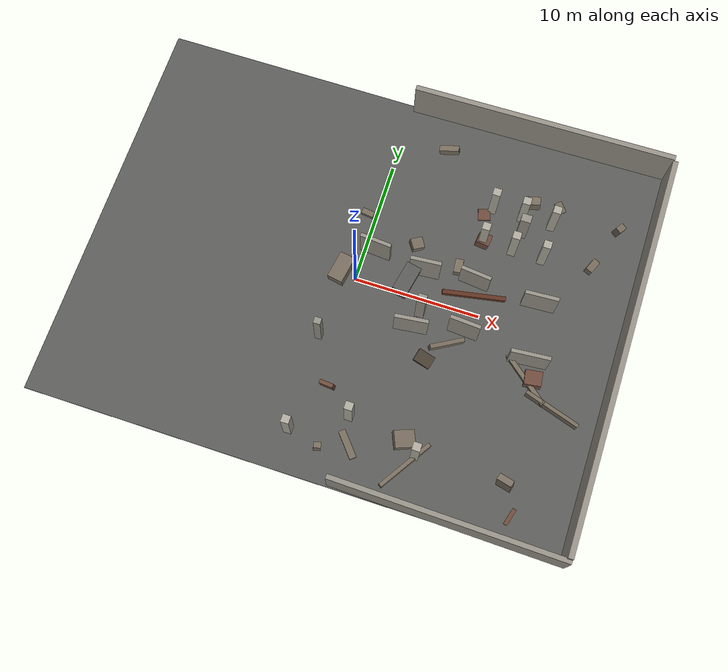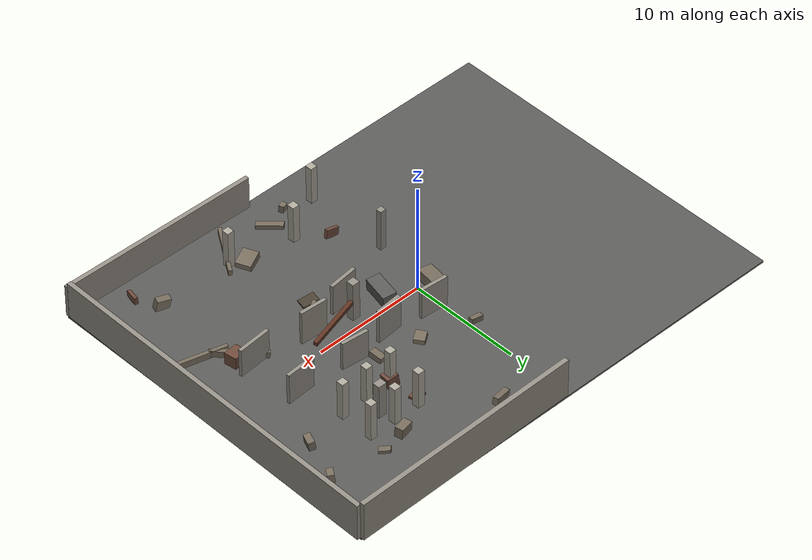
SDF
<sdf version="1.6">
 <model name="ruins_urban_01_base">
  <static>true</static>
  <link name="000_floor_slab">
   <pose>0.00000 0.00000 -0.08000 0.00000 0.00000 0.00000</pose>
   <visual name="visual">
    <geometry><box><size>42.00000 32.00000 0.16000</size></box></geometry>
    <material>
     <ambient>0.350 0.350 0.340 1</ambient>
     <diffuse>0.350 0.350 0.340 1</diffuse>
     <specular>0.03 0.03 0.03 1</specular>
    </material>
   </visual>
   <collision name="collision">
    <geometry><box><size>42.00000 32.00000 0.16000</size></box></geometry>
    <surface>
     <contact><collide_bitmask>0x01</collide_bitmask></contact>
     <friction><ode><mu>1.0</mu><mu2>1.0</mu2></ode></friction>
    </surface>
   </collision>
  </link>
  <link name="002_north_boundary_east">
   <pose>10.50000 15.90000 1.80000 0.00000 0.00000 0.01500</pose>
   <visual name="visual">
    <geometry><box><size>21.00000 0.42000 3.60000</size></box></geometry>
    <material>
     <ambient>0.580 0.560 0.520 1</ambient>
     <diffuse>0.580 0.560 0.520 1</diffuse>
     <specular>0.03 0.03 0.03 1</specular>
    </material>
   </visual>
   <collision name="collision">
    <geometry><box><size>21.00000 0.42000 3.60000</size></box></geometry>
    <surface>
     <contact><collide_bitmask>0x01</collide_bitmask></contact>
     <friction><ode><mu>1.0</mu><mu2>1.0</mu2></ode></friction>
    </surface>
   </collision>
  </link>
  <link name="004_south_boundary_east">
   <pose>12.00000 -15.85000 1.50000 0.00000 0.00000 -0.01800</pose>
   <visual name="visual">
    <geometry><box><size>18.00000 0.38000 3.00000</size></box></geometry>
    <material>
     <ambient>0.580 0.560 0.520 1</ambient>
     <diffuse>0.580 0.560 0.520 1</diffuse>
     <specular>0.03 0.03 0.03 1</specular>
    </material>
   </visual>
   <collision name="collision">
    <geometry><box><size>18.00000 0.38000 3.00000</size></box></geometry>
    <surface>
     <contact><collide_bitmask>0x01</collide_bitmask></contact>
     <friction><ode><mu>1.0</mu><mu2>1.0</mu2></ode></friction>
    </surface>
   </collision>
  </link>
  <link name="007_east_boundary">
   <pose>20.95000 0.00000 1.70000 0.00000 0.00000 -0.01000</pose>
   <visual name="visual">
    <geometry><box><size>0.42000 31.80000 3.40000</size></box></geometry>
    <material>
     <ambient>0.580 0.560 0.520 1</ambient>
     <diffuse>0.580 0.560 0.520 1</diffuse>
     <specular>0.03 0.03 0.03 1</specular>
    </material>
   </visual>
   <collision name="collision">
    <geometry><box><size>0.42000 31.80000 3.40000</size></box></geometry>
    <surface>
     <contact><collide_bitmask>0x01</collide_bitmask></contact>
     <friction><ode><mu>1.0</mu><mu2>1.0</mu2></ode></friction>
    </surface>
   </collision>
  </link>
  <link name="028_spine_broken_panel_04">
   <pose>0.85000 2.55000 1.42500 0.00000 0.00000 -0.07983</pose>
   <visual name="visual">
    <geometry><box><size>2.50799 0.30000 2.85000</size></box></geometry>
    <material>
     <ambient>0.580 0.560 0.520 1</ambient>
     <diffuse>0.580 0.560 0.520 1</diffuse>
     <specular>0.03 0.03 0.03 1</specular>
    </material>
   </visual>
   <collision name="collision">
    <geometry><box><size>2.50799 0.30000 2.85000</size></box></geometry>
    <surface>
     <contact><collide_bitmask>0x01</collide_bitmask></contact>
     <friction><ode><mu>1.0</mu><mu2>1.0</mu2></ode></friction>
    </surface>
   </collision>
  </link>
  <link name="029_spine_broken_panel_05">
   <pose>5.00000 2.05000 1.55000 0.00000 0.00000 0.08314</pose>
   <visual name="visual">
    <geometry><box><size>2.40832 0.30000 3.10000</size></box></geometry>
    <material>
     <ambient>0.580 0.560 0.520 1</ambient>
     <diffuse>0.580 0.560 0.520 1</diffuse>
     <specular>0.03 0.03 0.03 1</specular>
    </material>
   </visual>
   <collision name="collision">
    <geometry><box><size>2.40832 0.30000 3.10000</size></box></geometry>
    <surface>
     <contact><collide_bitmask>0x01</collide_bitmask></contact>
     <friction><ode><mu>1.0</mu><mu2>1.0</mu2></ode></friction>
    </surface>
   </collision>
  </link>
  <link name="030_spine_broken_panel_06">
   <pose>8.90000 2.47500 1.30000 0.00000 0.00000 -0.10379</pose>
   <visual name="visual">
    <geometry><box><size>2.41299 0.30000 2.60000</size></box></geometry>
    <material>
     <ambient>0.580 0.560 0.520 1</ambient>
     <diffuse>0.580 0.560 0.520 1</diffuse>
     <specular>0.03 0.03 0.03 1</specular>
    </material>
   </visual>
   <collision name="collision">
    <geometry><box><size>2.41299 0.30000 2.60000</size></box></geometry>
    <surface>
     <contact><collide_bitmask>0x01</collide_bitmask></contact>
     <friction><ode><mu>1.0</mu><mu2>1.0</mu2></ode></friction>
    </surface>
   </collision>
  </link>
  <link name="031_spine_broken_panel_07">
   <pose>14.10000 2.17500 1.42500 0.00000 0.00000 0.05763</pose>
   <visual name="visual">
    <geometry><box><size>2.60432 0.30000 2.85000</size></box></geometry>
    <material>
     <ambient>0.580 0.560 0.520 1</ambient>
     <diffuse>0.580 0.560 0.520 1</diffuse>
     <specular>0.03 0.03 0.03 1</specular>
    </material>
   </visual>
   <collision name="collision">
    <geometry><box><size>2.60432 0.30000 2.85000</size></box></geometry>
    <surface>
     <contact><collide_bitmask>0x01</collide_bitmask></contact>
     <friction><ode><mu>1.0</mu><mu2>1.0</mu2></ode></friction>
    </surface>
   </collision>
  </link>
  <link name="035_spine_broken_panel_13">
   <pose>5.30000 -2.60000 1.42500 0.00000 0.00000 0.11488</pose>
   <visual name="visual">
    <geometry><box><size>2.61725 0.30000 2.85000</size></box></geometry>
    <material>
     <ambient>0.580 0.560 0.520 1</ambient>
     <diffuse>0.580 0.560 0.520 1</diffuse>
     <specular>0.03 0.03 0.03 1</specular>
    </material>
   </visual>
   <collision name="collision">
    <geometry><box><size>2.61725 0.30000 2.85000</size></box></geometry>
    <surface>
     <contact><collide_bitmask>0x01</collide_bitmask></contact>
     <friction><ode><mu>1.0</mu><mu2>1.0</mu2></ode></friction>
    </surface>
   </collision>
  </link>
  <link name="036_spine_broken_panel_14">
   <pose>9.20000 -1.67500 1.55000 0.00000 0.00000 -0.06242</pose>
   <visual name="visual">
    <geometry><box><size>2.40468 0.30000 3.10000</size></box></geometry>
    <material>
     <ambient>0.580 0.560 0.520 1</ambient>
     <diffuse>0.580 0.560 0.520 1</diffuse>
     <specular>0.03 0.03 0.03 1</specular>
    </material>
   </visual>
   <collision name="collision">
    <geometry><box><size>2.40468 0.30000 3.10000</size></box></geometry>
    <surface>
     <contact><collide_bitmask>0x01</collide_bitmask></contact>
     <friction><ode><mu>1.0</mu><mu2>1.0</mu2></ode></friction>
    </surface>
   </collision>
  </link>
  <link name="037_spine_broken_panel_15">
   <pose>14.50000 -2.42500 1.30000 0.00000 0.00000 0.08314</pose>
   <visual name="visual">
    <geometry><box><size>3.01040 0.30000 2.60000</size></box></geometry>
    <material>
     <ambient>0.580 0.560 0.520 1</ambient>
     <diffuse>0.580 0.560 0.520 1</diffuse>
     <specular>0.03 0.03 0.03 1</specular>
    </material>
   </visual>
   <collision name="collision">
    <geometry><box><size>3.01040 0.30000 2.60000</size></box></geometry>
    <surface>
     <contact><collide_bitmask>0x01</collide_bitmask></contact>
     <friction><ode><mu>1.0</mu><mu2>1.0</mu2></ode></friction>
    </surface>
   </collision>
  </link>
  <link name="042_fixed_column_03">
   <pose>8.60000 6.00000 1.75000 0.00000 0.00000 0.00000</pose>
   <visual name="visual">
    <geometry><box><size>0.62000 0.62000 3.50000</size></box></geometry>
    <material>
     <ambient>0.680 0.660 0.610 1</ambient>
     <diffuse>0.680 0.660 0.610 1</diffuse>
     <specular>0.03 0.03 0.03 1</specular>
    </material>
   </visual>
   <collision name="collision">
    <geometry><box><size>0.62000 0.62000 3.50000</size></box></geometry>
    <surface>
     <contact><collide_bitmask>0x01</collide_bitmask></contact>
     <friction><ode><mu>1.0</mu><mu2>1.0</mu2></ode></friction>
    </surface>
   </collision>
  </link>
  <link name="043_fixed_column_04">
   <pose>11.00000 6.00000 1.75000 0.00000 0.00000 0.00000</pose>
   <visual name="visual">
    <geometry><box><size>0.62000 0.62000 3.50000</size></box></geometry>
    <material>
     <ambient>0.680 0.660 0.610 1</ambient>
     <diffuse>0.680 0.660 0.610 1</diffuse>
     <specular>0.03 0.03 0.03 1</specular>
    </material>
   </visual>
   <collision name="collision">
    <geometry><box><size>0.62000 0.62000 3.50000</size></box></geometry>
    <surface>
     <contact><collide_bitmask>0x01</collide_bitmask></contact>
     <friction><ode><mu>1.0</mu><mu2>1.0</mu2></ode></friction>
    </surface>
   </collision>
  </link>
  <link name="044_fixed_column_05">
   <pose>13.40000 6.00000 1.75000 0.00000 0.00000 0.00000</pose>
   <visual name="visual">
    <geometry><box><size>0.62000 0.62000 3.50000</size></box></geometry>
    <material>
     <ambient>0.680 0.660 0.610 1</ambient>
     <diffuse>0.680 0.660 0.610 1</diffuse>
     <specular>0.03 0.03 0.03 1</specular>
    </material>
   </visual>
   <collision name="collision">
    <geometry><box><size>0.62000 0.62000 3.50000</size></box></geometry>
    <surface>
     <contact><collide_bitmask>0x01</collide_bitmask></contact>
     <friction><ode><mu>1.0</mu><mu2>1.0</mu2></ode></friction>
    </surface>
   </collision>
  </link>
  <link name="045_fixed_column_06">
   <pose>8.60000 9.00000 1.75000 0.00000 0.00000 0.00000</pose>
   <visual name="visual">
    <geometry><box><size>0.62000 0.62000 3.50000</size></box></geometry>
    <material>
     <ambient>0.680 0.660 0.610 1</ambient>
     <diffuse>0.680 0.660 0.610 1</diffuse>
     <specular>0.03 0.03 0.03 1</specular>
    </material>
   </visual>
   <collision name="collision">
    <geometry><box><size>0.62000 0.62000 3.50000</size></box></geometry>
    <surface>
     <contact><collide_bitmask>0x01</collide_bitmask></contact>
     <friction><ode><mu>1.0</mu><mu2>1.0</mu2></ode></friction>
    </surface>
   </collision>
  </link>
  <link name="046_fixed_column_07">
   <pose>11.00000 9.00000 1.75000 0.00000 0.00000 0.00000</pose>
   <visual name="visual">
    <geometry><box><size>0.62000 0.62000 3.50000</size></box></geometry>
    <material>
     <ambient>0.680 0.660 0.610 1</ambient>
     <diffuse>0.680 0.660 0.610 1</diffuse>
     <specular>0.03 0.03 0.03 1</specular>
    </material>
   </visual>
   <collision name="collision">
    <geometry><box><size>0.62000 0.62000 3.50000</size></box></geometry>
    <surface>
     <contact><collide_bitmask>0x01</collide_bitmask></contact>
     <friction><ode><mu>1.0</mu><mu2>1.0</mu2></ode></friction>
    </surface>
   </collision>
  </link>
  <link name="047_fixed_column_08">
   <pose>13.40000 9.00000 1.75000 0.00000 0.00000 0.00000</pose>
   <visual name="visual">
    <geometry><box><size>0.62000 0.62000 3.50000</size></box></geometry>
    <material>
     <ambient>0.680 0.660 0.610 1</ambient>
     <diffuse>0.680 0.660 0.610 1</diffuse>
     <specular>0.03 0.03 0.03 1</specular>
    </material>
   </visual>
   <collision name="collision">
    <geometry><box><size>0.62000 0.62000 3.50000</size></box></geometry>
    <surface>
     <contact><collide_bitmask>0x01</collide_bitmask></contact>
     <friction><ode><mu>1.0</mu><mu2>1.0</mu2></ode></friction>
    </surface>
   </collision>
  </link>
  <link name="048_fixed_column_09">
   <pose>-1.00000 -12.80000 1.75000 0.00000 0.00000 0.00000</pose>
   <visual name="visual">
    <geometry><box><size>0.62000 0.62000 3.50000</size></box></geometry>
    <material>
     <ambient>0.680 0.660 0.610 1</ambient>
     <diffuse>0.680 0.660 0.610 1</diffuse>
     <specular>0.03 0.03 0.03 1</specular>
    </material>
   </visual>
   <collision name="collision">
    <geometry><box><size>0.62000 0.62000 3.50000</size></box></geometry>
    <surface>
     <contact><collide_bitmask>0x01</collide_bitmask></contact>
     <friction><ode><mu>1.0</mu><mu2>1.0</mu2></ode></friction>
    </surface>
   </collision>
  </link>
  <link name="049_fixed_column_10">
   <pose>3.00000 -10.50000 1.75000 0.00000 0.00000 0.00000</pose>
   <visual name="visual">
    <geometry><box><size>0.62000 0.62000 3.50000</size></box></geometry>
    <material>
     <ambient>0.680 0.660 0.610 1</ambient>
     <diffuse>0.680 0.660 0.610 1</diffuse>
     <specular>0.03 0.03 0.03 1</specular>
    </material>
   </visual>
   <collision name="collision">
    <geometry><box><size>0.62000 0.62000 3.50000</size></box></geometry>
    <surface>
     <contact><collide_bitmask>0x01</collide_bitmask></contact>
     <friction><ode><mu>1.0</mu><mu2>1.0</mu2></ode></friction>
    </surface>
   </collision>
  </link>
  <link name="050_fixed_column_11">
   <pose>8.50000 -11.80000 1.75000 0.00000 0.00000 0.00000</pose>
   <visual name="visual">
    <geometry><box><size>0.62000 0.62000 3.50000</size></box></geometry>
    <material>
     <ambient>0.680 0.660 0.610 1</ambient>
     <diffuse>0.680 0.660 0.610 1</diffuse>
     <specular>0.03 0.03 0.03 1</specular>
    </material>
   </visual>
   <collision name="collision">
    <geometry><box><size>0.62000 0.62000 3.50000</size></box></geometry>
    <surface>
     <contact><collide_bitmask>0x01</collide_bitmask></contact>
     <friction><ode><mu>1.0</mu><mu2>1.0</mu2></ode></friction>
    </surface>
   </collision>
  </link>
  <link name="051_overflight_rubble_gate">
   <pose>-1.20000 0.35000 0.45000 0.05000 -0.06000 -0.18000</pose>
   <visual name="visual">
    <geometry><box><size>1.25000 2.20000 0.90000</size></box></geometry>
    <material>
     <ambient>0.460 0.420 0.360 1</ambient>
     <diffuse>0.460 0.420 0.360 1</diffuse>
     <specular>0.03 0.03 0.03 1</specular>
    </material>
   </visual>
   <collision name="collision">
    <geometry><box><size>1.25000 2.20000 0.90000</size></box></geometry>
    <surface>
     <contact><collide_bitmask>0x01</collide_bitmask></contact>
     <friction><ode><mu>1.0</mu><mu2>1.0</mu2></ode></friction>
    </surface>
   </collision>
  </link>
  <link name="052_underflight_hanging_gate">
   <pose>4.00000 0.25000 2.55000 -0.04000 0.08000 -0.20000</pose>
   <visual name="visual">
    <geometry><box><size>1.20000 2.40000 1.05000</size></box></geometry>
    <material>
     <ambient>0.350 0.350 0.340 1</ambient>
     <diffuse>0.350 0.350 0.340 1</diffuse>
     <specular>0.03 0.03 0.03 1</specular>
    </material>
   </visual>
   <collision name="collision">
    <geometry><box><size>1.20000 2.40000 1.05000</size></box></geometry>
    <surface>
     <contact><collide_bitmask>0x01</collide_bitmask></contact>
     <friction><ode><mu>1.0</mu><mu2>1.0</mu2></ode></friction>
    </surface>
   </collision>
  </link>
  <link name="053_east_slanted_beam">
   <pose>9.20000 0.55000 2.85000 0.00000 0.10000 0.22000</pose>
   <visual name="visual">
    <geometry><box><size>4.80000 0.34000 0.34000</size></box></geometry>
    <material>
     <ambient>0.370 0.200 0.130 1</ambient>
     <diffuse>0.370 0.200 0.130 1</diffuse>
     <specular>0.03 0.03 0.03 1</specular>
    </material>
   </visual>
   <collision name="collision">
    <geometry><box><size>4.80000 0.34000 0.34000</size></box></geometry>
    <surface>
     <contact><collide_bitmask>0x01</collide_bitmask></contact>
     <friction><ode><mu>1.0</mu><mu2>1.0</mu2></ode></friction>
    </surface>
   </collision>
  </link>
  <link name="056_base_random_column_02">
   <pose>5.62630 -1.10804 1.81061 0.00000 0.00000 0.00000</pose>
   <visual name="visual">
    <geometry><box><size>0.69136 0.66345 3.62122</size></box></geometry>
    <material>
     <ambient>0.580 0.560 0.520 1</ambient>
     <diffuse>0.580 0.560 0.520 1</diffuse>
     <specular>0.03 0.03 0.03 1</specular>
    </material>
   </visual>
   <collision name="collision">
    <geometry><box><size>0.69136 0.66345 3.62122</size></box></geometry>
    <surface>
     <contact><collide_bitmask>0x01</collide_bitmask></contact>
     <friction><ode><mu>1.0</mu><mu2>1.0</mu2></ode></friction>
    </surface>
   </collision>
  </link>
  <link name="058_base_random_column_04">
   <pose>11.32133 7.73776 1.57901 0.00000 0.00000 0.00000</pose>
   <visual name="visual">
    <geometry><box><size>0.77641 0.64260 3.15802</size></box></geometry>
    <material>
     <ambient>0.580 0.560 0.520 1</ambient>
     <diffuse>0.580 0.560 0.520 1</diffuse>
     <specular>0.03 0.03 0.03 1</specular>
    </material>
   </visual>
   <collision name="collision">
    <geometry><box><size>0.77641 0.64260 3.15802</size></box></geometry>
    <surface>
     <contact><collide_bitmask>0x01</collide_bitmask></contact>
     <friction><ode><mu>1.0</mu><mu2>1.0</mu2></ode></friction>
    </surface>
   </collision>
  </link>
  <link name="059_base_random_column_05">
   <pose>-1.16520 -5.23505 1.93866 0.00000 0.00000 0.00000</pose>
   <visual name="visual">
    <geometry><box><size>0.54675 0.49649 3.87733</size></box></geometry>
    <material>
     <ambient>0.580 0.560 0.520 1</ambient>
     <diffuse>0.580 0.560 0.520 1</diffuse>
     <specular>0.03 0.03 0.03 1</specular>
    </material>
   </visual>
   <collision name="collision">
    <geometry><box><size>0.54675 0.49649 3.87733</size></box></geometry>
    <surface>
     <contact><collide_bitmask>0x01</collide_bitmask></contact>
     <friction><ode><mu>1.0</mu><mu2>1.0</mu2></ode></friction>
    </surface>
   </collision>
  </link>
  <link name="060_base_rubble_000">
   <pose>0.69368 -8.77868 0.37933 -0.06838 0.17858 3.03112</pose>
   <visual name="visual">
    <geometry><box><size>1.13273 0.31544 0.75866</size></box></geometry>
    <material>
     <ambient>0.430 0.290 0.230 1</ambient>
     <diffuse>0.430 0.290 0.230 1</diffuse>
     <specular>0.03 0.03 0.03 1</specular>
    </material>
   </visual>
   <collision name="collision">
    <geometry><box><size>1.13273 0.31544 0.75866</size></box></geometry>
    <surface>
     <contact><collide_bitmask>0x01</collide_bitmask></contact>
     <friction><ode><mu>1.0</mu><mu2>1.0</mu2></ode></friction>
    </surface>
   </collision>
  </link>
  <link name="061_base_rubble_001">
   <pose>7.41804 3.38708 0.25396 -0.10298 -0.05295 0.09406</pose>
   <visual name="visual">
    <geometry><box><size>0.64593 1.17779 0.50792</size></box></geometry>
    <material>
     <ambient>0.460 0.420 0.360 1</ambient>
     <diffuse>0.460 0.420 0.360 1</diffuse>
     <specular>0.03 0.03 0.03 1</specular>
    </material>
   </visual>
   <collision name="collision">
    <geometry><box><size>0.64593 1.17779 0.50792</size></box></geometry>
    <surface>
     <contact><collide_bitmask>0x01</collide_bitmask></contact>
     <friction><ode><mu>1.0</mu><mu2>1.0</mu2></ode></friction>
    </surface>
   </collision>
  </link>
  <link name="066_base_rubble_006">
   <pose>3.88785 12.86551 0.33204 -0.02583 -0.15363 0.22298</pose>
   <visual name="visual">
    <geometry><box><size>1.57082 0.48658 0.66408</size></box></geometry>
    <material>
     <ambient>0.460 0.420 0.360 1</ambient>
     <diffuse>0.460 0.420 0.360 1</diffuse>
     <specular>0.03 0.03 0.03 1</specular>
    </material>
   </visual>
   <collision name="collision">
    <geometry><box><size>1.57082 0.48658 0.66408</size></box></geometry>
    <surface>
     <contact><collide_bitmask>0x01</collide_bitmask></contact>
     <friction><ode><mu>1.0</mu><mu2>1.0</mu2></ode></friction>
    </surface>
   </collision>
  </link>
  <link name="067_base_rubble_007">
   <pose>7.01440 -4.54363 0.15774 -0.05409 -0.17481 2.90814</pose>
   <visual name="visual">
    <geometry><box><size>1.38252 1.01835 0.31548</size></box></geometry>
    <material>
     <ambient>0.290 0.250 0.200 1</ambient>
     <diffuse>0.290 0.250 0.200 1</diffuse>
     <specular>0.03 0.03 0.03 1</specular>
    </material>
   </visual>
   <collision name="collision">
    <geometry><box><size>1.38252 1.01835 0.31548</size></box></geometry>
    <surface>
     <contact><collide_bitmask>0x01</collide_bitmask></contact>
     <friction><ode><mu>1.0</mu><mu2>1.0</mu2></ode></friction>
    </surface>
   </collision>
  </link>
  <link name="068_base_rubble_008">
   <pose>15.25083 -3.62352 0.51768 0.03225 -0.03571 0.12304</pose>
   <visual name="visual">
    <geometry><box><size>1.30734 1.13507 1.03537</size></box></geometry>
    <material>
     <ambient>0.430 0.290 0.230 1</ambient>
     <diffuse>0.430 0.290 0.230 1</diffuse>
     <specular>0.03 0.03 0.03 1</specular>
    </material>
   </visual>
   <collision name="collision">
    <geometry><box><size>1.30734 1.13507 1.03537</size></box></geometry>
    <surface>
     <contact><collide_bitmask>0x01</collide_bitmask></contact>
     <friction><ode><mu>1.0</mu><mu2>1.0</mu2></ode></friction>
    </surface>
   </collision>
  </link>
  <link name="070_base_rubble_010">
   <pose>17.29969 6.58739 0.39626 -0.02113 -0.12436 2.75779</pose>
   <visual name="visual">
    <geometry><box><size>0.55135 1.07638 0.79253</size></box></geometry>
    <material>
     <ambient>0.460 0.420 0.360 1</ambient>
     <diffuse>0.460 0.420 0.360 1</diffuse>
     <specular>0.03 0.03 0.03 1</specular>
    </material>
   </visual>
   <collision name="collision">
    <geometry><box><size>0.55135 1.07638 0.79253</size></box></geometry>
    <surface>
     <contact><collide_bitmask>0x01</collide_bitmask></contact>
     <friction><ode><mu>1.0</mu><mu2>1.0</mu2></ode></friction>
    </surface>
   </collision>
  </link>
  <link name="073_base_rubble_013">
   <pose>1.46314 -13.42751 0.36021 -0.09674 0.06898 0.26857</pose>
   <visual name="visual">
    <geometry><box><size>0.54129 0.45559 0.72042</size></box></geometry>
    <material>
     <ambient>0.460 0.420 0.360 1</ambient>
     <diffuse>0.460 0.420 0.360 1</diffuse>
     <specular>0.03 0.03 0.03 1</specular>
    </material>
   </visual>
   <collision name="collision">
    <geometry><box><size>0.54129 0.45559 0.72042</size></box></geometry>
    <surface>
     <contact><collide_bitmask>0x01</collide_bitmask></contact>
     <friction><ode><mu>1.0</mu><mu2>1.0</mu2></ode></friction>
    </surface>
   </collision>
  </link>
  <link name="075_base_rubble_015">
   <pose>18.59276 10.20899 0.47607 0.13220 -0.12239 2.53401</pose>
   <visual name="visual">
    <geometry><box><size>0.53001 0.71681 0.95215</size></box></geometry>
    <material>
     <ambient>0.460 0.420 0.360 1</ambient>
     <diffuse>0.460 0.420 0.360 1</diffuse>
     <specular>0.03 0.03 0.03 1</specular>
    </material>
   </visual>
   <collision name="collision">
    <geometry><box><size>0.53001 0.71681 0.95215</size></box></geometry>
    <surface>
     <contact><collide_bitmask>0x01</collide_bitmask></contact>
     <friction><ode><mu>1.0</mu><mu2>1.0</mu2></ode></friction>
    </surface>
   </collision>
  </link>
  <link name="076_base_rubble_016">
   <pose>8.10554 8.33616 0.11115 0.09824 0.00494 0.27383</pose>
   <visual name="visual">
    <geometry><box><size>0.96019 0.92242 0.22231</size></box></geometry>
    <material>
     <ambient>0.430 0.290 0.230 1</ambient>
     <diffuse>0.430 0.290 0.230 1</diffuse>
     <specular>0.03 0.03 0.03 1</specular>
    </material>
   </visual>
   <collision name="collision">
    <geometry><box><size>0.96019 0.92242 0.22231</size></box></geometry>
    <surface>
     <contact><collide_bitmask>0x01</collide_bitmask></contact>
     <friction><ode><mu>1.0</mu><mu2>1.0</mu2></ode></friction>
    </surface>
   </collision>
  </link>
  <link name="078_base_rubble_018">
   <pose>7.40315 -10.95616 0.34235 -0.00917 0.17534 0.39782</pose>
   <visual name="visual">
    <geometry><box><size>1.55593 1.33416 0.68469</size></box></geometry>
    <material>
     <ambient>0.460 0.420 0.360 1</ambient>
     <diffuse>0.460 0.420 0.360 1</diffuse>
     <specular>0.03 0.03 0.03 1</specular>
    </material>
   </visual>
   <collision name="collision">
    <geometry><box><size>1.55593 1.33416 0.68469</size></box></geometry>
    <surface>
     <contact><collide_bitmask>0x01</collide_bitmask></contact>
     <friction><ode><mu>1.0</mu><mu2>1.0</mu2></ode></friction>
    </surface>
   </collision>
  </link>
  <link name="079_base_rubble_019">
   <pose>-0.69200 5.55893 0.22500 -0.05298 -0.11693 1.43685</pose>
   <visual name="visual">
    <geometry><box><size>0.46745 1.00889 0.44999</size></box></geometry>
    <material>
     <ambient>0.460 0.420 0.360 1</ambient>
     <diffuse>0.460 0.420 0.360 1</diffuse>
     <specular>0.03 0.03 0.03 1</specular>
    </material>
   </visual>
   <collision name="collision">
    <geometry><box><size>0.46745 1.00889 0.44999</size></box></geometry>
    <surface>
     <contact><collide_bitmask>0x01</collide_bitmask></contact>
     <friction><ode><mu>1.0</mu><mu2>1.0</mu2></ode></friction>
    </surface>
   </collision>
  </link>
  <link name="080_base_rubble_020">
   <pose>16.34330 -13.95268 0.27904 -0.03087 -0.16671 1.29589</pose>
   <visual name="visual">
    <geometry><box><size>1.31256 0.30755 0.55808</size></box></geometry>
    <material>
     <ambient>0.430 0.290 0.230 1</ambient>
     <diffuse>0.430 0.290 0.230 1</diffuse>
     <specular>0.03 0.03 0.03 1</specular>
    </material>
   </visual>
   <collision name="collision">
    <geometry><box><size>1.31256 0.30755 0.55808</size></box></geometry>
    <surface>
     <contact><collide_bitmask>0x01</collide_bitmask></contact>
     <friction><ode><mu>1.0</mu><mu2>1.0</mu2></ode></friction>
    </surface>
   </collision>
  </link>
  <link name="082_base_rubble_022">
   <pose>11.47583 10.36262 0.44660 -0.05208 0.04835 1.79394</pose>
   <visual name="visual">
    <geometry><box><size>0.70159 1.24457 0.89319</size></box></geometry>
    <material>
     <ambient>0.460 0.420 0.360 1</ambient>
     <diffuse>0.460 0.420 0.360 1</diffuse>
     <specular>0.03 0.03 0.03 1</specular>
    </material>
   </visual>
   <collision name="collision">
    <geometry><box><size>0.70159 1.24457 0.89319</size></box></geometry>
    <surface>
     <contact><collide_bitmask>0x01</collide_bitmask></contact>
     <friction><ode><mu>1.0</mu><mu2>1.0</mu2></ode></friction>
    </surface>
   </collision>
  </link>
  <link name="083_base_rubble_023">
   <pose>3.77681 4.19703 0.27959 0.16886 -0.01071 2.15636</pose>
   <visual name="visual">
    <geometry><box><size>0.90749 0.96613 0.55919</size></box></geometry>
    <material>
     <ambient>0.460 0.420 0.360 1</ambient>
     <diffuse>0.460 0.420 0.360 1</diffuse>
     <specular>0.03 0.03 0.03 1</specular>
    </material>
   </visual>
   <collision name="collision">
    <geometry><box><size>0.90749 0.96613 0.55919</size></box></geometry>
    <surface>
     <contact><collide_bitmask>0x01</collide_bitmask></contact>
     <friction><ode><mu>1.0</mu><mu2>1.0</mu2></ode></friction>
    </surface>
   </collision>
  </link>
  <link name="084_base_rubble_024">
   <pose>8.65485 6.02615 0.51941 0.11874 -0.04614 1.47504</pose>
   <visual name="visual">
    <geometry><box><size>0.92367 1.01097 1.03883</size></box></geometry>
    <material>
     <ambient>0.430 0.290 0.230 1</ambient>
     <diffuse>0.430 0.290 0.230 1</diffuse>
     <specular>0.03 0.03 0.03 1</specular>
    </material>
   </visual>
   <collision name="collision">
    <geometry><box><size>0.92367 1.01097 1.03883</size></box></geometry>
    <surface>
     <contact><collide_bitmask>0x01</collide_bitmask></contact>
     <friction><ode><mu>1.0</mu><mu2>1.0</mu2></ode></friction>
    </surface>
   </collision>
  </link>
  <link name="086_base_rubble_026">
   <pose>15.33480 -11.73984 0.53664 0.17458 0.13005 2.88390</pose>
   <visual name="visual">
    <geometry><box><size>1.18490 0.54574 1.07328</size></box></geometry>
    <material>
     <ambient>0.460 0.420 0.360 1</ambient>
     <diffuse>0.460 0.420 0.360 1</diffuse>
     <specular>0.03 0.03 0.03 1</specular>
    </material>
   </visual>
   <collision name="collision">
    <geometry><box><size>1.18490 0.54574 1.07328</size></box></geometry>
    <surface>
     <contact><collide_bitmask>0x01</collide_bitmask></contact>
     <friction><ode><mu>1.0</mu><mu2>1.0</mu2></ode></friction>
    </surface>
   </collision>
  </link>
  <link name="087_base_rubble_027">
   <pose>13.72456 10.78124 0.12849 -0.09250 -0.16356 2.30966</pose>
   <visual name="visual">
    <geometry><box><size>0.94308 0.57952 0.25697</size></box></geometry>
    <material>
     <ambient>0.460 0.420 0.360 1</ambient>
     <diffuse>0.460 0.420 0.360 1</diffuse>
     <specular>0.03 0.03 0.03 1</specular>
    </material>
   </visual>
   <collision name="collision">
    <geometry><box><size>0.94308 0.57952 0.25697</size></box></geometry>
    <surface>
     <contact><collide_bitmask>0x01</collide_bitmask></contact>
     <friction><ode><mu>1.0</mu><mu2>1.0</mu2></ode></friction>
    </surface>
   </collision>
  </link>
  <link name="088_base_collapsed_wall_00">
   <pose>8.03792 -12.77844 0.43012 -0.01488 0.02735 1.00271</pose>
   <visual name="visual">
    <geometry><box><size>4.77958 0.30035 0.52296</size></box></geometry>
    <material>
     <ambient>0.460 0.420 0.360 1</ambient>
     <diffuse>0.460 0.420 0.360 1</diffuse>
     <specular>0.03 0.03 0.03 1</specular>
    </material>
   </visual>
   <collision name="collision">
    <geometry><box><size>4.77958 0.30035 0.52296</size></box></geometry>
    <surface>
     <contact><collide_bitmask>0x01</collide_bitmask></contact>
     <friction><ode><mu>1.0</mu><mu2>1.0</mu2></ode></friction>
    </surface>
   </collision>
  </link>
  <link name="091_base_collapsed_wall_03">
   <pose>17.17635 -5.43029 0.47239 0.08179 -0.03468 2.84520</pose>
   <visual name="visual">
    <geometry><box><size>4.49427 0.30834 0.63057</size></box></geometry>
    <material>
     <ambient>0.460 0.420 0.360 1</ambient>
     <diffuse>0.460 0.420 0.360 1</diffuse>
     <specular>0.03 0.03 0.03 1</specular>
    </material>
   </visual>
   <collision name="collision">
    <geometry><box><size>4.49427 0.30834 0.63057</size></box></geometry>
    <surface>
     <contact><collide_bitmask>0x01</collide_bitmask></contact>
     <friction><ode><mu>1.0</mu><mu2>1.0</mu2></ode></friction>
    </surface>
   </collision>
  </link>
  <link name="092_base_collapsed_wall_04">
   <pose>3.55085 -12.60810 0.35840 -0.02176 -0.06719 2.27782</pose>
   <visual name="visual">
    <geometry><box><size>2.21342 0.53162 0.38802</size></box></geometry>
    <material>
     <ambient>0.460 0.420 0.360 1</ambient>
     <diffuse>0.460 0.420 0.360 1</diffuse>
     <specular>0.03 0.03 0.03 1</specular>
    </material>
   </visual>
   <collision name="collision">
    <geometry><box><size>2.21342 0.53162 0.38802</size></box></geometry>
    <surface>
     <contact><collide_bitmask>0x01</collide_bitmask></contact>
     <friction><ode><mu>1.0</mu><mu2>1.0</mu2></ode></friction>
    </surface>
   </collision>
  </link>
  <link name="093_base_collapsed_wall_05">
   <pose>14.73688 -3.81142 0.38307 -0.09429 0.07663 2.42692</pose>
   <visual name="visual">
    <geometry><box><size>4.60235 0.36210 0.53210</size></box></geometry>
    <material>
     <ambient>0.460 0.420 0.360 1</ambient>
     <diffuse>0.460 0.420 0.360 1</diffuse>
     <specular>0.03 0.03 0.03 1</specular>
    </material>
   </visual>
   <collision name="collision">
    <geometry><box><size>4.60235 0.36210 0.53210</size></box></geometry>
    <surface>
     <contact><collide_bitmask>0x01</collide_bitmask></contact>
     <friction><ode><mu>1.0</mu><mu2>1.0</mu2></ode></friction>
    </surface>
   </collision>
  </link>
  <link name="095_base_collapsed_wall_07">
   <pose>8.30137 -2.96507 0.44564 0.08909 0.11630 0.55382</pose>
   <visual name="visual">
    <geometry><box><size>2.73873 0.33428 0.79320</size></box></geometry>
    <material>
     <ambient>0.460 0.420 0.360 1</ambient>
     <diffuse>0.460 0.420 0.360 1</diffuse>
     <specular>0.03 0.03 0.03 1</specular>
    </material>
   </visual>
   <collision name="collision">
    <geometry><box><size>2.73873 0.33428 0.79320</size></box></geometry>
    <surface>
     <contact><collide_bitmask>0x01</collide_bitmask></contact>
     <friction><ode><mu>1.0</mu><mu2>1.0</mu2></ode></friction>
    </surface>
   </collision>
  </link>
 </model>
</sdf>
